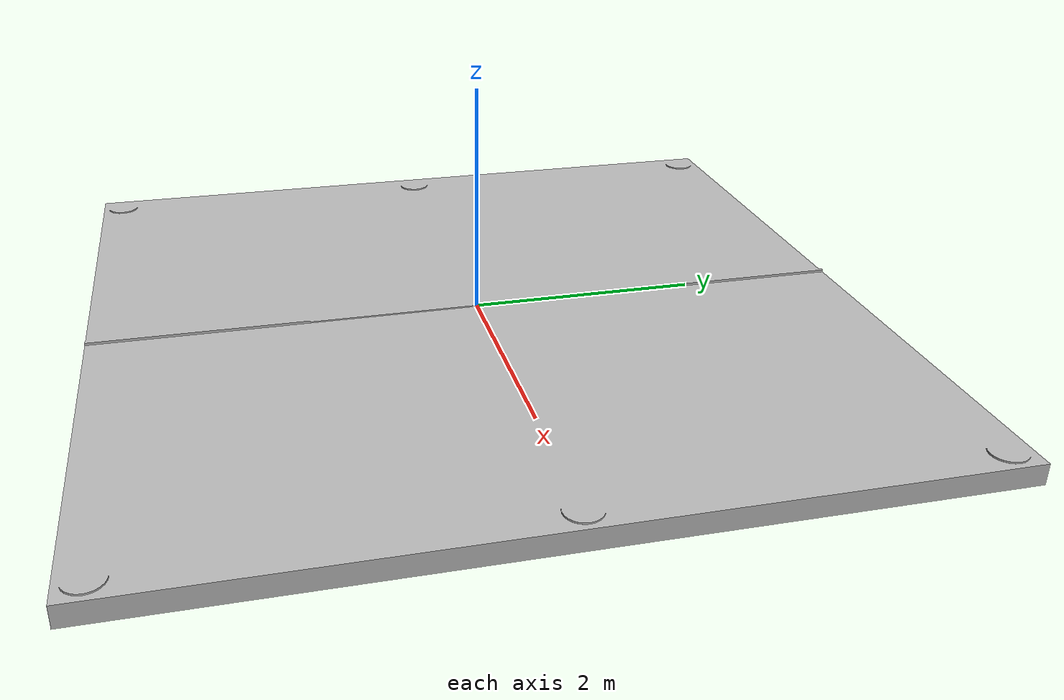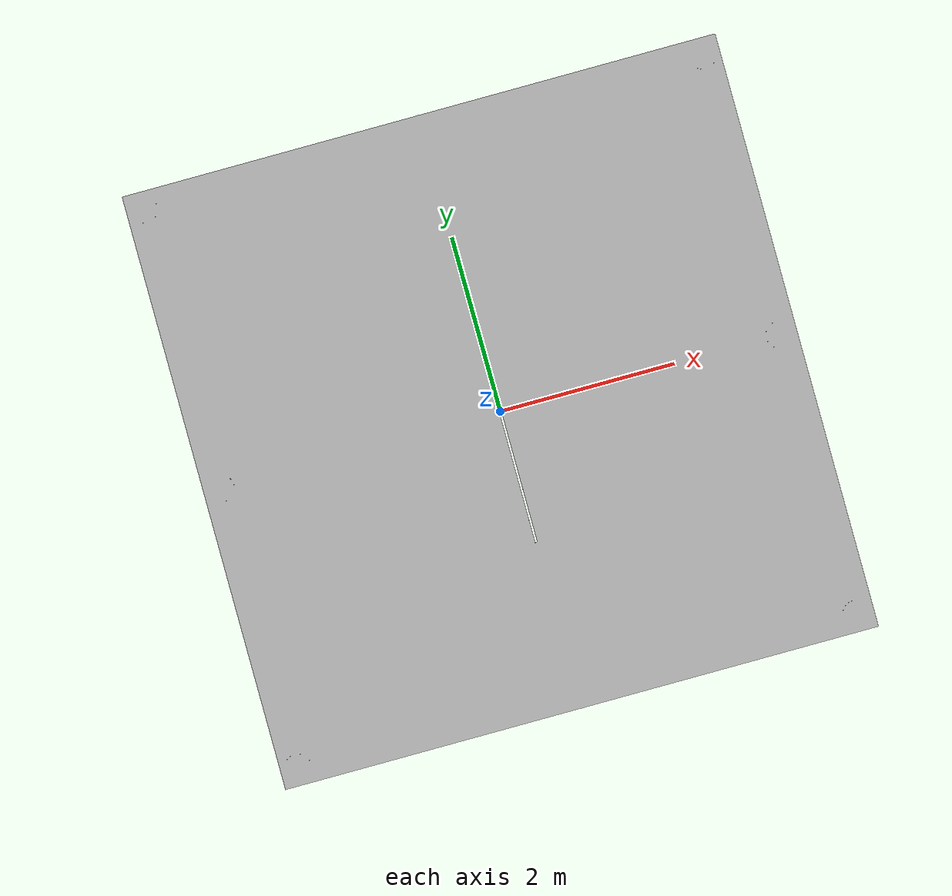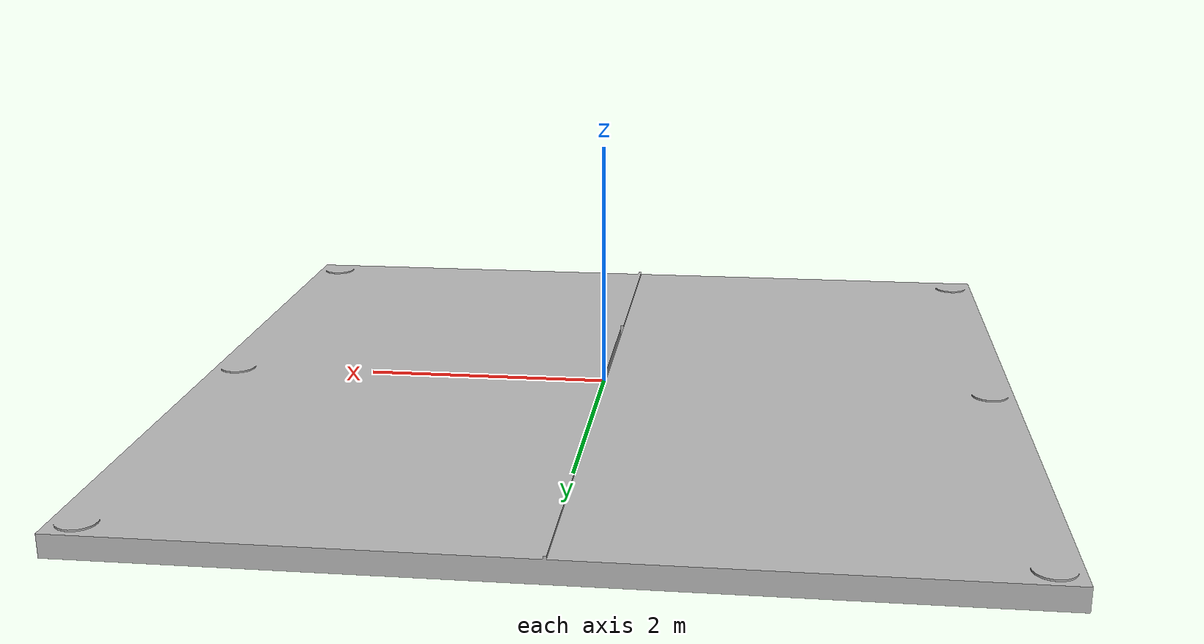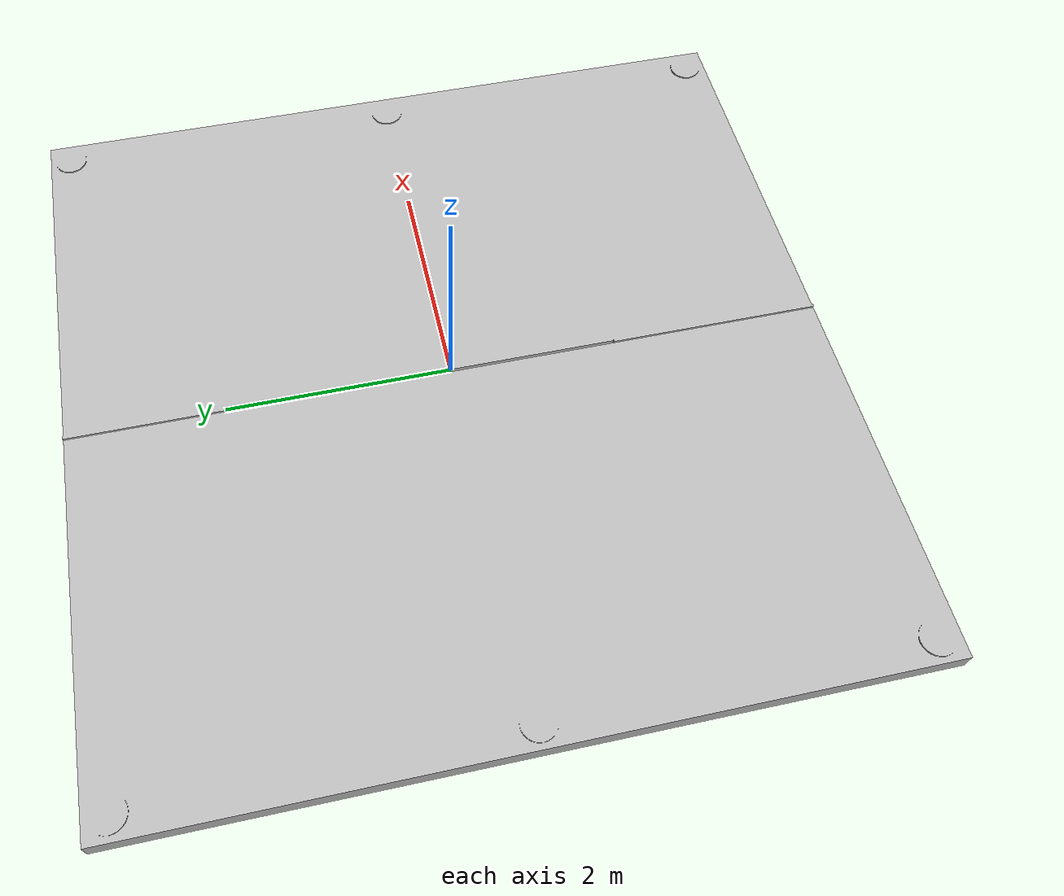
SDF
<?xml version="1.0"?>
<sdf version="1.6">
  <model name="abu_floor_2">
      <pose>0 0 0  0 0 0</pose>
      <static>true</static>
      <link name="body">
        <visual name="visual">
          <geometry>
            <mesh><uri>model://abu_floor_2/meshes/abu_floor_2.dae</uri></mesh>
          </geometry>
        </visual>
      </link>
 </model>
</sdf>
